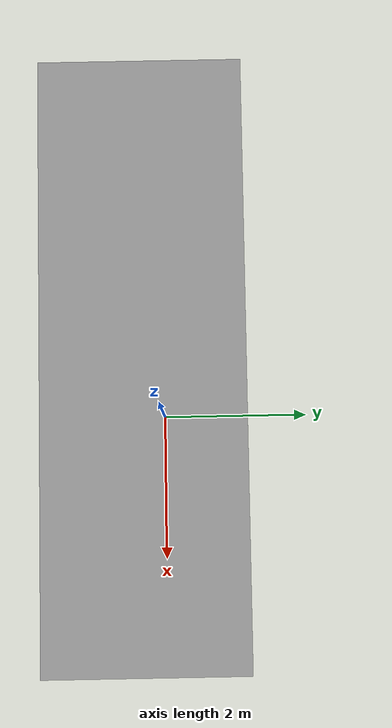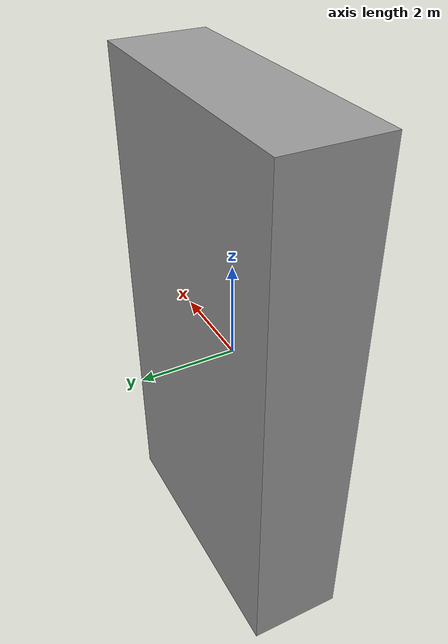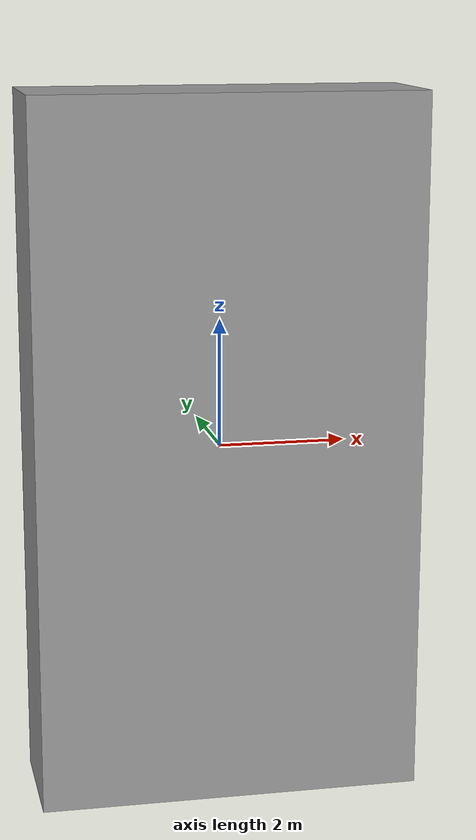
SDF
<?xml version="1.0" ?>
<sdf version="1.6">
  <model name="wall">
    <static>true</static>
    <link name="wall_link">
      <collision name="collision">
        <geometry>
          <box>
            <size>6 0.5 10</size>
          </box>
        </geometry>
      </collision>
      <visual name="visual">
        <geometry>
          <box>
            <size>6 2 11</size>
          </box>
        </geometry>
        <material>
          <script>
            <uri>file://media/materials/scripts/gazebo.material</uri>
            <name>Gazebo/Grey</name>
          </script>
        </material>
      </visual>
    </link>
  </model>
</sdf>
